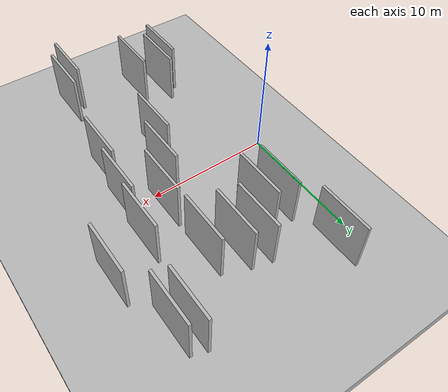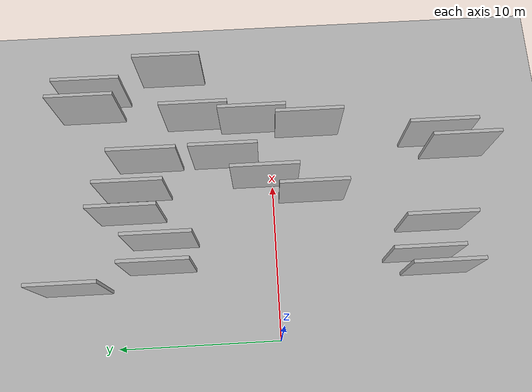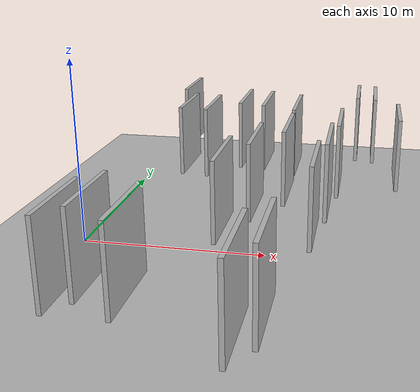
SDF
<?xml version="1.0" encoding="utf-8"?>

<sdf version="1.6">

   <world name="default">

      <gui fullscreen="0">

         <camera name="user_camera">

            <pose>-15 0 4.57585 0 0 0</pose>

            <view_controller>orbit</view_controller>

         </camera>

      </gui>

      <scene>

         <sky>

           <clouds>

             <speed>12</speed>

           </clouds>

         </sky>

         <ambient>0.4 0.4 0.4 1</ambient>

         <background>0.7 0.7 0.7 1</background>

         <shadows>1</shadows>

      </scene>

      <gravity>0 0 -9.8066</gravity>

      <magnetic_field>6e-06 2.3e-05 -4.2e-05</magnetic_field>

      <physics default="0" name="default_physics" type="ode">

         <ode>

            <solver>

               <type>quick</type>

               <iters>10</iters>

               <sor>1.0</sor>

               <use_dynamic_moi_rescaling>0</use_dynamic_moi_rescaling>

            </solver>

            <constraints>

               <cfm>0</cfm>

               <erp>0.2</erp>

               <contact_max_correcting_vel>100</contact_max_correcting_vel>

               <contact_surface_layer>0.001</contact_surface_layer>

            </constraints>

         </ode>

         <max_step_size>0.004</max_step_size>

         <real_time_factor>1</real_time_factor>

         <real_time_update_rate>250</real_time_update_rate>

      </physics>

      <light name="sun" type="directional">

         <cast_shadows>1</cast_shadows>

         <pose>0 0 10 0 0 0</pose>

         <diffuse>0.8 0.8 0.8 1</diffuse>

         <specular>0.2 0.2 0.2 1</specular>

         <attenuation>

            <range>1000</range>

            <constant>0.9</constant>

            <linear>0.01</linear>

            <quadratic>0.001</quadratic>

         </attenuation>

         <direction>-0.5 0.1 -0.9</direction>

      </light>

      <include>

         <name>ground_plane_1</name>

         <uri>model://HANNAS_ground_plane</uri>

         <pose>0 0 0  0 0 0</pose>

      </include>

      <include>

         <name>ground_plane_2</name>

         <uri>model://HANNAS_ground_plane</uri>

         <pose>100 0 0  0 0 0</pose>

      </include>

      <model name="HANNAS_wall_1">

         <static>1</static>

         <pose frame="">16.5848 6.0553 2.5 0.000000 0.000000 1.570796</pose>

         <link name="link">

            <pose frame="">0 0 2.00 0 0 0</pose>

            <collision name="collision">

               <geometry>

                  <box>

                     <size>4.00 0.2 4.00</size>

                  </box>

               </geometry>

               <max_contacts>10</max_contacts>

               <surface>

                  <contact>

                     <ode/>

                  </contact>

                  <bounce/>

                  <friction>

                     <torsional>

                        <ode/>

                     </torsional>

                     <ode/>

                  </friction>

               </surface>

            </collision>

            <visual name="visual">

               <cast_shadows>0</cast_shadows>

               <geometry>

                  <box>

                     <size>4.00 0.2 4.00</size>

                  </box>

               </geometry>

               <material>

                  <script>

                     <uri>model://HANNAS_wall/materials/scripts</uri>

                     <uri>model://HANNAS_wall/materials/textures</uri>

                     <name>vrc/HANNAS_wall</name>

                  </script>

               </material>

            </visual>

            <self_collide>0</self_collide>

            <enable_wind>0</enable_wind>

            <kinematic>0</kinematic>

         </link>

      </model>

      <model name="HANNAS_wall_2">

         <static>1</static>

         <pose frame="">3.2176 11.8162 2.5 0.000000 0.000000 1.570796</pose>

         <link name="link">

            <pose frame="">0 0 2.00 0 0 0</pose>

            <collision name="collision">

               <geometry>

                  <box>

                     <size>4.00 0.2 4.00</size>

                  </box>

               </geometry>

               <max_contacts>10</max_contacts>

               <surface>

                  <contact>

                     <ode/>

                  </contact>

                  <bounce/>

                  <friction>

                     <torsional>

                        <ode/>

                     </torsional>

                     <ode/>

                  </friction>

               </surface>

            </collision>

            <visual name="visual">

               <cast_shadows>0</cast_shadows>

               <geometry>

                  <box>

                     <size>4.00 0.2 4.00</size>

                  </box>

               </geometry>

               <material>

                  <script>

                     <uri>model://HANNAS_wall/materials/scripts</uri>

                     <uri>model://HANNAS_wall/materials/textures</uri>

                     <name>vrc/HANNAS_wall</name>

                  </script>

               </material>

            </visual>

            <self_collide>0</self_collide>

            <enable_wind>0</enable_wind>

            <kinematic>0</kinematic>

         </link>

      </model>

      <model name="HANNAS_wall_3">

         <static>1</static>

         <pose frame="">9.3807 0.4920 2.5 0.000000 0.000000 1.570796</pose>

         <link name="link">

            <pose frame="">0 0 2.00 0 0 0</pose>

            <collision name="collision">

               <geometry>

                  <box>

                     <size>4.00 0.2 4.00</size>

                  </box>

               </geometry>

               <max_contacts>10</max_contacts>

               <surface>

                  <contact>

                     <ode/>

                  </contact>

                  <bounce/>

                  <friction>

                     <torsional>

                        <ode/>

                     </torsional>

                     <ode/>

                  </friction>

               </surface>

            </collision>

            <visual name="visual">

               <cast_shadows>0</cast_shadows>

               <geometry>

                  <box>

                     <size>4.00 0.2 4.00</size>

                  </box>

               </geometry>

               <material>

                  <script>

                     <uri>model://HANNAS_wall/materials/scripts</uri>

                     <uri>model://HANNAS_wall/materials/textures</uri>

                     <name>vrc/HANNAS_wall</name>

                  </script>

               </material>

            </visual>

            <self_collide>0</self_collide>

            <enable_wind>0</enable_wind>

            <kinematic>0</kinematic>

         </link>

      </model>

      <model name="HANNAS_wall_4">

         <static>1</static>

         <pose frame="">4.2445 6.8425 2.5 0.000000 0.000000 1.570796</pose>

         <link name="link">

            <pose frame="">0 0 2.00 0 0 0</pose>

            <collision name="collision">

               <geometry>

                  <box>

                     <size>4.00 0.2 4.00</size>

                  </box>

               </geometry>

               <max_contacts>10</max_contacts>

               <surface>

                  <contact>

                     <ode/>

                  </contact>

                  <bounce/>

                  <friction>

                     <torsional>

                        <ode/>

                     </torsional>

                     <ode/>

                  </friction>

               </surface>

            </collision>

            <visual name="visual">

               <cast_shadows>0</cast_shadows>

               <geometry>

                  <box>

                     <size>4.00 0.2 4.00</size>

                  </box>

               </geometry>

               <material>

                  <script>

                     <uri>model://HANNAS_wall/materials/scripts</uri>

                     <uri>model://HANNAS_wall/materials/textures</uri>

                     <name>vrc/HANNAS_wall</name>

                  </script>

               </material>

            </visual>

            <self_collide>0</self_collide>

            <enable_wind>0</enable_wind>

            <kinematic>0</kinematic>

         </link>

      </model>

      <model name="HANNAS_wall_5">

         <static>1</static>

         <pose frame="">13.0477 1.0896 2.5 0.000000 0.000000 1.570796</pose>

         <link name="link">

            <pose frame="">0 0 2.00 0 0 0</pose>

            <collision name="collision">

               <geometry>

                  <box>

                     <size>4.00 0.2 4.00</size>

                  </box>

               </geometry>

               <max_contacts>10</max_contacts>

               <surface>

                  <contact>

                     <ode/>

                  </contact>

                  <bounce/>

                  <friction>

                     <torsional>

                        <ode/>

                     </torsional>

                     <ode/>

                  </friction>

               </surface>

            </collision>

            <visual name="visual">

               <cast_shadows>0</cast_shadows>

               <geometry>

                  <box>

                     <size>4.00 0.2 4.00</size>

                  </box>

               </geometry>

               <material>

                  <script>

                     <uri>model://HANNAS_wall/materials/scripts</uri>

                     <uri>model://HANNAS_wall/materials/textures</uri>

                     <name>vrc/HANNAS_wall</name>

                  </script>

               </material>

            </visual>

            <self_collide>0</self_collide>

            <enable_wind>0</enable_wind>

            <kinematic>0</kinematic>

         </link>

      </model>

      <model name="HANNAS_wall_6">

         <static>1</static>

         <pose frame="">13.4179 4.4958 2.5 0.000000 0.000000 1.570796</pose>

         <link name="link">

            <pose frame="">0 0 2.00 0 0 0</pose>

            <collision name="collision">

               <geometry>

                  <box>

                     <size>4.00 0.2 4.00</size>

                  </box>

               </geometry>

               <max_contacts>10</max_contacts>

               <surface>

                  <contact>

                     <ode/>

                  </contact>

                  <bounce/>

                  <friction>

                     <torsional>

                        <ode/>

                     </torsional>

                     <ode/>

                  </friction>

               </surface>

            </collision>

            <visual name="visual">

               <cast_shadows>0</cast_shadows>

               <geometry>

                  <box>

                     <size>4.00 0.2 4.00</size>

                  </box>

               </geometry>

               <material>

                  <script>

                     <uri>model://HANNAS_wall/materials/scripts</uri>

                     <uri>model://HANNAS_wall/materials/textures</uri>

                     <name>vrc/HANNAS_wall</name>

                  </script>

               </material>

            </visual>

            <self_collide>0</self_collide>

            <enable_wind>0</enable_wind>

            <kinematic>0</kinematic>

         </link>

      </model>

      <model name="HANNAS_wall_7">

         <static>1</static>

         <pose frame="">11.5581 -10.0238 2.5 0.000000 0.000000 1.570796</pose>

         <link name="link">

            <pose frame="">0 0 2.00 0 0 0</pose>

            <collision name="collision">

               <geometry>

                  <box>

                     <size>4.00 0.2 4.00</size>

                  </box>

               </geometry>

               <max_contacts>10</max_contacts>

               <surface>

                  <contact>

                     <ode/>

                  </contact>

                  <bounce/>

                  <friction>

                     <torsional>

                        <ode/>

                     </torsional>

                     <ode/>

                  </friction>

               </surface>

            </collision>

            <visual name="visual">

               <cast_shadows>0</cast_shadows>

               <geometry>

                  <box>

                     <size>4.00 0.2 4.00</size>

                  </box>

               </geometry>

               <material>

                  <script>

                     <uri>model://HANNAS_wall/materials/scripts</uri>

                     <uri>model://HANNAS_wall/materials/textures</uri>

                     <name>vrc/HANNAS_wall</name>

                  </script>

               </material>

            </visual>

            <self_collide>0</self_collide>

            <enable_wind>0</enable_wind>

            <kinematic>0</kinematic>

         </link>

      </model>

      <model name="HANNAS_wall_8">

         <static>1</static>

         <pose frame="">8.2780 -2.2807 2.5 0.000000 0.000000 1.570796</pose>

         <link name="link">

            <pose frame="">0 0 2.00 0 0 0</pose>

            <collision name="collision">

               <geometry>

                  <box>

                     <size>4.00 0.2 4.00</size>

                  </box>

               </geometry>

               <max_contacts>10</max_contacts>

               <surface>

                  <contact>

                     <ode/>

                  </contact>

                  <bounce/>

                  <friction>

                     <torsional>

                        <ode/>

                     </torsional>

                     <ode/>

                  </friction>

               </surface>

            </collision>

            <visual name="visual">

               <cast_shadows>0</cast_shadows>

               <geometry>

                  <box>

                     <size>4.00 0.2 4.00</size>

                  </box>

               </geometry>

               <material>

                  <script>

                     <uri>model://HANNAS_wall/materials/scripts</uri>

                     <uri>model://HANNAS_wall/materials/textures</uri>

                     <name>vrc/HANNAS_wall</name>

                  </script>

               </material>

            </visual>

            <self_collide>0</self_collide>

            <enable_wind>0</enable_wind>

            <kinematic>0</kinematic>

         </link>

      </model>

      <model name="HANNAS_wall_9">

         <static>1</static>

         <pose frame="">12.6233 -2.2796 2.5 0.000000 0.000000 1.570796</pose>

         <link name="link">

            <pose frame="">0 0 2.00 0 0 0</pose>

            <collision name="collision">

               <geometry>

                  <box>

                     <size>4.00 0.2 4.00</size>

                  </box>

               </geometry>

               <max_contacts>10</max_contacts>

               <surface>

                  <contact>

                     <ode/>

                  </contact>

                  <bounce/>

                  <friction>

                     <torsional>

                        <ode/>

                     </torsional>

                     <ode/>

                  </friction>

               </surface>

            </collision>

            <visual name="visual">

               <cast_shadows>0</cast_shadows>

               <geometry>

                  <box>

                     <size>4.00 0.2 4.00</size>

                  </box>

               </geometry>

               <material>

                  <script>

                     <uri>model://HANNAS_wall/materials/scripts</uri>

                     <uri>model://HANNAS_wall/materials/textures</uri>

                     <name>vrc/HANNAS_wall</name>

                  </script>

               </material>

            </visual>

            <self_collide>0</self_collide>

            <enable_wind>0</enable_wind>

            <kinematic>0</kinematic>

         </link>

      </model>

      <model name="HANNAS_wall_10">

         <static>1</static>

         <pose frame="">10.7625 2.8384 2.5 0.000000 0.000000 1.570796</pose>

         <link name="link">

            <pose frame="">0 0 2.00 0 0 0</pose>

            <collision name="collision">

               <geometry>

                  <box>

                     <size>4.00 0.2 4.00</size>

                  </box>

               </geometry>

               <max_contacts>10</max_contacts>

               <surface>

                  <contact>

                     <ode/>

                  </contact>

                  <bounce/>

                  <friction>

                     <torsional>

                        <ode/>

                     </torsional>

                     <ode/>

                  </friction>

               </surface>

            </collision>

            <visual name="visual">

               <cast_shadows>0</cast_shadows>

               <geometry>

                  <box>

                     <size>4.00 0.2 4.00</size>

                  </box>

               </geometry>

               <material>

                  <script>

                     <uri>model://HANNAS_wall/materials/scripts</uri>

                     <uri>model://HANNAS_wall/materials/textures</uri>

                     <name>vrc/HANNAS_wall</name>

                  </script>

               </material>

            </visual>

            <self_collide>0</self_collide>

            <enable_wind>0</enable_wind>

            <kinematic>0</kinematic>

         </link>

      </model>

      <model name="HANNAS_wall_11">

         <static>1</static>

         <pose frame="">8.8445 8.2771 2.5 0.000000 0.000000 1.570796</pose>

         <link name="link">

            <pose frame="">0 0 2.00 0 0 0</pose>

            <collision name="collision">

               <geometry>

                  <box>

                     <size>4.00 0.2 4.00</size>

                  </box>

               </geometry>

               <max_contacts>10</max_contacts>

               <surface>

                  <contact>

                     <ode/>

                  </contact>

                  <bounce/>

                  <friction>

                     <torsional>

                        <ode/>

                     </torsional>

                     <ode/>

                  </friction>

               </surface>

            </collision>

            <visual name="visual">

               <cast_shadows>0</cast_shadows>

               <geometry>

                  <box>

                     <size>4.00 0.2 4.00</size>

                  </box>

               </geometry>

               <material>

                  <script>

                     <uri>model://HANNAS_wall/materials/scripts</uri>

                     <uri>model://HANNAS_wall/materials/textures</uri>

                     <name>vrc/HANNAS_wall</name>

                  </script>

               </material>

            </visual>

            <self_collide>0</self_collide>

            <enable_wind>0</enable_wind>

            <kinematic>0</kinematic>

         </link>

      </model>

      <model name="HANNAS_wall_12">

         <static>1</static>

         <pose frame="">10.7211 7.5156 2.5 0.000000 0.000000 1.570796</pose>

         <link name="link">

            <pose frame="">0 0 2.00 0 0 0</pose>

            <collision name="collision">

               <geometry>

                  <box>

                     <size>4.00 0.2 4.00</size>

                  </box>

               </geometry>

               <max_contacts>10</max_contacts>

               <surface>

                  <contact>

                     <ode/>

                  </contact>

                  <bounce/>

                  <friction>

                     <torsional>

                        <ode/>

                     </torsional>

                     <ode/>

                  </friction>

               </surface>

            </collision>

            <visual name="visual">

               <cast_shadows>0</cast_shadows>

               <geometry>

                  <box>

                     <size>4.00 0.2 4.00</size>

                  </box>

               </geometry>

               <material>

                  <script>

                     <uri>model://HANNAS_wall/materials/scripts</uri>

                     <uri>model://HANNAS_wall/materials/textures</uri>

                     <name>vrc/HANNAS_wall</name>

                  </script>

               </material>

            </visual>

            <self_collide>0</self_collide>

            <enable_wind>0</enable_wind>

            <kinematic>0</kinematic>

         </link>

      </model>

      <model name="HANNAS_wall_13">

         <static>1</static>

         <pose frame="">7.4155 8.6247 2.5 0.000000 0.000000 1.570796</pose>

         <link name="link">

            <pose frame="">0 0 2.00 0 0 0</pose>

            <collision name="collision">

               <geometry>

                  <box>

                     <size>4.00 0.2 4.00</size>

                  </box>

               </geometry>

               <max_contacts>10</max_contacts>

               <surface>

                  <contact>

                     <ode/>

                  </contact>

                  <bounce/>

                  <friction>

                     <torsional>

                        <ode/>

                     </torsional>

                     <ode/>

                  </friction>

               </surface>

            </collision>

            <visual name="visual">

               <cast_shadows>0</cast_shadows>

               <geometry>

                  <box>

                     <size>4.00 0.2 4.00</size>

                  </box>

               </geometry>

               <material>

                  <script>

                     <uri>model://HANNAS_wall/materials/scripts</uri>

                     <uri>model://HANNAS_wall/materials/textures</uri>

                     <name>vrc/HANNAS_wall</name>

                  </script>

               </material>

            </visual>

            <self_collide>0</self_collide>

            <enable_wind>0</enable_wind>

            <kinematic>0</kinematic>

         </link>

      </model>

      <model name="HANNAS_wall_14">

         <static>1</static>

         <pose frame="">6.0431 -9.2315 2.5 0.000000 0.000000 1.570796</pose>

         <link name="link">

            <pose frame="">0 0 2.00 0 0 0</pose>

            <collision name="collision">

               <geometry>

                  <box>

                     <size>4.00 0.2 4.00</size>

                  </box>

               </geometry>

               <max_contacts>10</max_contacts>

               <surface>

                  <contact>

                     <ode/>

                  </contact>

                  <bounce/>

                  <friction>

                     <torsional>

                        <ode/>

                     </torsional>

                     <ode/>

                  </friction>

               </surface>

            </collision>

            <visual name="visual">

               <cast_shadows>0</cast_shadows>

               <geometry>

                  <box>

                     <size>4.00 0.2 4.00</size>

                  </box>

               </geometry>

               <material>

                  <script>

                     <uri>model://HANNAS_wall/materials/scripts</uri>

                     <uri>model://HANNAS_wall/materials/textures</uri>

                     <name>vrc/HANNAS_wall</name>

                  </script>

               </material>

            </visual>

            <self_collide>0</self_collide>

            <enable_wind>0</enable_wind>

            <kinematic>0</kinematic>

         </link>

      </model>

      <model name="HANNAS_wall_15">

         <static>1</static>

         <pose frame="">4.2022 -8.2888 2.5 0.000000 0.000000 1.570796</pose>

         <link name="link">

            <pose frame="">0 0 2.00 0 0 0</pose>

            <collision name="collision">

               <geometry>

                  <box>

                     <size>4.00 0.2 4.00</size>

                  </box>

               </geometry>

               <max_contacts>10</max_contacts>

               <surface>

                  <contact>

                     <ode/>

                  </contact>

                  <bounce/>

                  <friction>

                     <torsional>

                        <ode/>

                     </torsional>

                     <ode/>

                  </friction>

               </surface>

            </collision>

            <visual name="visual">

               <cast_shadows>0</cast_shadows>

               <geometry>

                  <box>

                     <size>4.00 0.2 4.00</size>

                  </box>

               </geometry>

               <material>

                  <script>

                     <uri>model://HANNAS_wall/materials/scripts</uri>

                     <uri>model://HANNAS_wall/materials/textures</uri>

                     <name>vrc/HANNAS_wall</name>

                  </script>

               </material>

            </visual>

            <self_collide>0</self_collide>

            <enable_wind>0</enable_wind>

            <kinematic>0</kinematic>

         </link>

      </model>

      <model name="HANNAS_wall_16">

         <static>1</static>

         <pose frame="">14.2305 11.1473 2.5 0.000000 0.000000 1.570796</pose>

         <link name="link">

            <pose frame="">0 0 2.00 0 0 0</pose>

            <collision name="collision">

               <geometry>

                  <box>

                     <size>4.00 0.2 4.00</size>

                  </box>

               </geometry>

               <max_contacts>10</max_contacts>

               <surface>

                  <contact>

                     <ode/>

                  </contact>

                  <bounce/>

                  <friction>

                     <torsional>

                        <ode/>

                     </torsional>

                     <ode/>

                  </friction>

               </surface>

            </collision>

            <visual name="visual">

               <cast_shadows>0</cast_shadows>

               <geometry>

                  <box>

                     <size>4.00 0.2 4.00</size>

                  </box>

               </geometry>

               <material>

                  <script>

                     <uri>model://HANNAS_wall/materials/scripts</uri>

                     <uri>model://HANNAS_wall/materials/textures</uri>

                     <name>vrc/HANNAS_wall</name>

                  </script>

               </material>

            </visual>

            <self_collide>0</self_collide>

            <enable_wind>0</enable_wind>

            <kinematic>0</kinematic>

         </link>

      </model>

      <model name="HANNAS_wall_17">

         <static>1</static>

         <pose frame="">5.7551 6.6732 2.5 0.000000 0.000000 1.570796</pose>

         <link name="link">

            <pose frame="">0 0 2.00 0 0 0</pose>

            <collision name="collision">

               <geometry>

                  <box>

                     <size>4.00 0.2 4.00</size>

                  </box>

               </geometry>

               <max_contacts>10</max_contacts>

               <surface>

                  <contact>

                     <ode/>

                  </contact>

                  <bounce/>

                  <friction>

                     <torsional>

                        <ode/>

                     </torsional>

                     <ode/>

                  </friction>

               </surface>

            </collision>

            <visual name="visual">

               <cast_shadows>0</cast_shadows>

               <geometry>

                  <box>

                     <size>4.00 0.2 4.00</size>

                  </box>

               </geometry>

               <material>

                  <script>

                     <uri>model://HANNAS_wall/materials/scripts</uri>

                     <uri>model://HANNAS_wall/materials/textures</uri>

                     <name>vrc/HANNAS_wall</name>

                  </script>

               </material>

            </visual>

            <self_collide>0</self_collide>

            <enable_wind>0</enable_wind>

            <kinematic>0</kinematic>

         </link>

      </model>

      <model name="HANNAS_wall_18">

         <static>1</static>

         <pose frame="">3.3708 -9.2669 2.5 0.000000 0.000000 1.570796</pose>

         <link name="link">

            <pose frame="">0 0 2.00 0 0 0</pose>

            <collision name="collision">

               <geometry>

                  <box>

                     <size>4.00 0.2 4.00</size>

                  </box>

               </geometry>

               <max_contacts>10</max_contacts>

               <surface>

                  <contact>

                     <ode/>

                  </contact>

                  <bounce/>

                  <friction>

                     <torsional>

                        <ode/>

                     </torsional>

                     <ode/>

                  </friction>

               </surface>

            </collision>

            <visual name="visual">

               <cast_shadows>0</cast_shadows>

               <geometry>

                  <box>

                     <size>4.00 0.2 4.00</size>

                  </box>

               </geometry>

               <material>

                  <script>

                     <uri>model://HANNAS_wall/materials/scripts</uri>

                     <uri>model://HANNAS_wall/materials/textures</uri>

                     <name>vrc/HANNAS_wall</name>

                  </script>

               </material>

            </visual>

            <self_collide>0</self_collide>

            <enable_wind>0</enable_wind>

            <kinematic>0</kinematic>

         </link>

      </model>

      <model name="HANNAS_wall_19">

         <static>1</static>

         <pose frame="">10.6959 -11.2518 2.5 0.000000 0.000000 1.570796</pose>

         <link name="link">

            <pose frame="">0 0 2.00 0 0 0</pose>

            <collision name="collision">

               <geometry>

                  <box>

                     <size>4.00 0.2 4.00</size>

                  </box>

               </geometry>

               <max_contacts>10</max_contacts>

               <surface>

                  <contact>

                     <ode/>

                  </contact>

                  <bounce/>

                  <friction>

                     <torsional>

                        <ode/>

                     </torsional>

                     <ode/>

                  </friction>

               </surface>

            </collision>

            <visual name="visual">

               <cast_shadows>0</cast_shadows>

               <geometry>

                  <box>

                     <size>4.00 0.2 4.00</size>

                  </box>

               </geometry>

               <material>

                  <script>

                     <uri>model://HANNAS_wall/materials/scripts</uri>

                     <uri>model://HANNAS_wall/materials/textures</uri>

                     <name>vrc/HANNAS_wall</name>

                  </script>

               </material>

            </visual>

            <self_collide>0</self_collide>

            <enable_wind>0</enable_wind>

            <kinematic>0</kinematic>

         </link>

      </model>

      <model name="HANNAS_wall_20">

         <static>1</static>

         <pose frame="">15.2718 10.8051 2.5 0.000000 0.000000 1.570796</pose>

         <link name="link">

            <pose frame="">0 0 2.00 0 0 0</pose>

            <collision name="collision">

               <geometry>

                  <box>

                     <size>4.00 0.2 4.00</size>

                  </box>

               </geometry>

               <max_contacts>10</max_contacts>

               <surface>

                  <contact>

                     <ode/>

                  </contact>

                  <bounce/>

                  <friction>

                     <torsional>

                        <ode/>

                     </torsional>

                     <ode/>

                  </friction>

               </surface>

            </collision>

            <visual name="visual">

               <cast_shadows>0</cast_shadows>

               <geometry>

                  <box>

                     <size>4.00 0.2 4.00</size>

                  </box>

               </geometry>

               <material>

                  <script>

                     <uri>model://HANNAS_wall/materials/scripts</uri>

                     <uri>model://HANNAS_wall/materials/textures</uri>

                     <name>vrc/HANNAS_wall</name>

                  </script>

               </material>

            </visual>

            <self_collide>0</self_collide>

            <enable_wind>0</enable_wind>

            <kinematic>0</kinematic>

         </link>

      </model>

   </world>

</sdf>

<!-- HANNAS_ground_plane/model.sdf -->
<sdf version="1.4">
<model name="HANNAS_ground_plane">
  <static>true</static>
    <link name="link">
      <collision name="collision">
        <geometry>
          <plane>
            <normal>0 0 1</normal>
            <size>1000 1000</size>
          </plane>
        </geometry>
        <surface>
          <friction>
            <ode>
              <mu>100</mu>
              <mu2>50</mu2>
            </ode>
          </friction>
        </surface>
      </collision>
      <visual name="visual">
        <cast_shadows>false</cast_shadows>
        <geometry>
          <plane>
            <normal>0 0 1</normal>
            <size>1000 1000</size>
          </plane>
        </geometry>
        <material>
          <script>
            <uri>model://HANNAS_ground_plane/materials/scripts/HANNAS_ground_plane.material</uri>
	    <uri>model://HANNAS_ground_plane/materials/textures</uri>
            <name>HANNASGroundPlane/Image</name>
          </script>
        </material>
      </visual>
    </link>
  </model>
</sdf>
